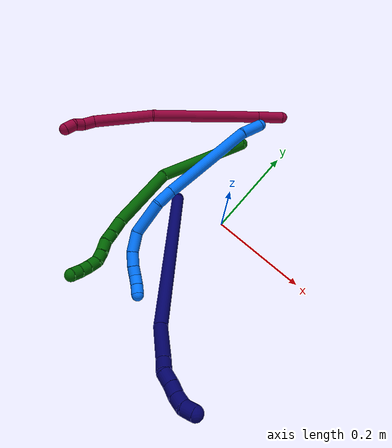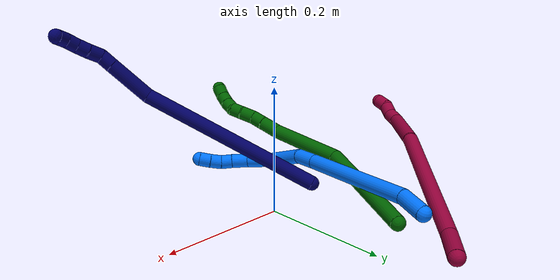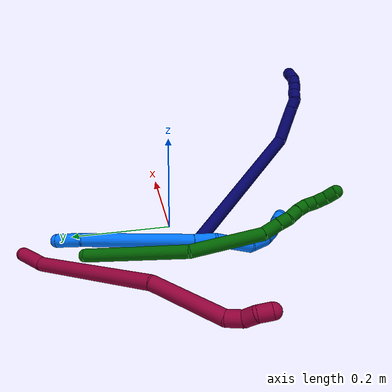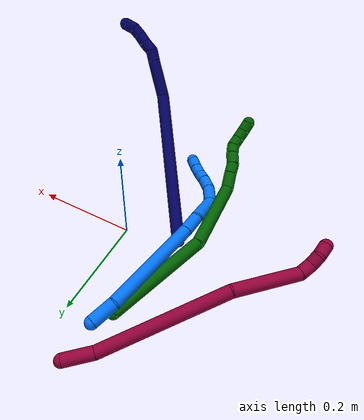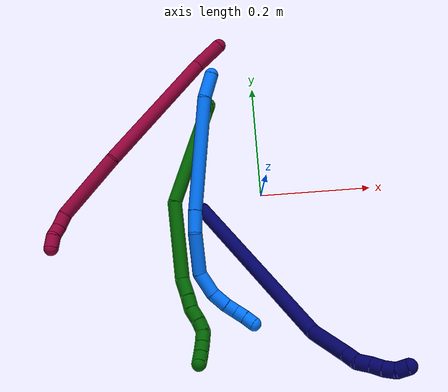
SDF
<sdf version="1.7">
 <world name="default">
  <model name="6">
   <static>0</static>
   <link name="6">
    <collision name="collision-cylinder-e_1_1_4">
     <pose>-0.007725 -0.0869 -0.049241 2.08632 -0.077192 -0.132335</pose>
     <geometry><cylinder><radius>0.0125</radius><length>0.20036</length></cylinder></geometry>
     <surface>
      <friction><ode><mu>1.16</mu><mu2>1.16</mu2><slip1>0</slip1><slip2>0</slip2></ode></friction>
      <contact><ode><kp>1e+06</kp><kd>1</kd><max_vel>0</max_vel><min_depth>0.001</min_depth></ode></contact>
     </surface>
    </collision>
    <visual name="visual-cylinder-e_1_1_4">
     <pose>-0.007725 -0.0869 -0.049241 2.08632 -0.077192 -0.132335</pose>
     <geometry><cylinder><radius>0.0125</radius><length>0.20036</length></cylinder></geometry>
     <material><ambient>0 0.392157 0.003922 1</ambient></material>
    </visual>
    <collision name="collision-cylinder-e_2_4_5">
     <pose>0.004337 -0.236837 -0.119218 1.8886 0.28979 0.397888</pose>
     <geometry><cylinder><radius>0.0125</radius><length>0.138493</length></cylinder></geometry>
     <surface>
      <friction><ode><mu>1.16</mu><mu2>1.16</mu2><slip1>0</slip1><slip2>0</slip2></ode></friction>
      <contact><ode><kp>1e+06</kp><kd>1</kd><max_vel>0</max_vel><min_depth>0.001</min_depth></ode></contact>
     </surface>
    </collision>
    <visual name="visual-cylinder-e_2_4_5">
     <pose>0.004337 -0.236837 -0.119218 1.8886 0.28979 0.397888</pose>
     <geometry><cylinder><radius>0.0125</radius><length>0.138493</length></cylinder></geometry>
     <material><ambient>0 0.392157 0.003922 1</ambient></material>
    </visual>
    <collision name="collision-cylinder-e_3_5_6">
     <pose>0.028736 -0.315865 -0.139747 1.55783 0.28076 0.27719</pose>
     <geometry><cylinder><radius>0.0125</radius><length>0.033291</length></cylinder></geometry>
     <surface>
      <friction><ode><mu>1.16</mu><mu2>1.16</mu2><slip1>0</slip1><slip2>0</slip2></ode></friction>
      <contact><ode><kp>1e+06</kp><kd>1</kd><max_vel>0</max_vel><min_depth>0.001</min_depth></ode></contact>
     </surface>
    </collision>
    <visual name="visual-cylinder-e_3_5_6">
     <pose>0.028736 -0.315865 -0.139747 1.55783 0.28076 0.27719</pose>
     <geometry><cylinder><radius>0.0125</radius><length>0.033291</length></cylinder></geometry>
     <material><ambient>0 0.392157 0.003922 1</ambient></material>
    </visual>
    <collision name="collision-cylinder-e_4_6_7">
     <pose>0.036339 -0.34292 -0.140071 1.61877 0.263772 0.276577</pose>
     <geometry><cylinder><radius>0.0125</radius><length>0.022944</length></cylinder></geometry>
     <surface>
      <friction><ode><mu>1.16</mu><mu2>1.16</mu2><slip1>0</slip1><slip2>0</slip2></ode></friction>
      <contact><ode><kp>1e+06</kp><kd>1</kd><max_vel>0</max_vel><min_depth>0.001</min_depth></ode></contact>
     </surface>
    </collision>
    <visual name="visual-cylinder-e_4_6_7">
     <pose>0.036339 -0.34292 -0.140071 1.61877 0.263772 0.276577</pose>
     <geometry><cylinder><radius>0.0125</radius><length>0.022944</length></cylinder></geometry>
     <material><ambient>0 0.392157 0.003922 1</ambient></material>
    </visual>
    <collision name="collision-cylinder-e_5_7_8">
     <pose>0.044787 -0.364848 -0.13868 1.39573 0.459222 0.38713</pose>
     <geometry><cylinder><radius>0.0125</radius><length>0.024619</length></cylinder></geometry>
     <surface>
      <friction><ode><mu>1.16</mu><mu2>1.16</mu2><slip1>0</slip1><slip2>0</slip2></ode></friction>
      <contact><ode><kp>1e+06</kp><kd>1</kd><max_vel>0</max_vel><min_depth>0.001</min_depth></ode></contact>
     </surface>
    </collision>
    <visual name="visual-cylinder-e_5_7_8">
     <pose>0.044787 -0.364848 -0.13868 1.39573 0.459222 0.38713</pose>
     <geometry><cylinder><radius>0.0125</radius><length>0.024619</length></cylinder></geometry>
     <material><ambient>0 0.392157 0.003922 1</ambient></material>
    </visual>
    <collision name="collision-cylinder-e_6_8_9">
     <pose>0.054363 -0.384906 -0.136709 1.56546 0.421393 0.419215</pose>
     <geometry><cylinder><radius>0.0125</radius><length>0.020146</length></cylinder></geometry>
     <surface>
      <friction><ode><mu>1.16</mu><mu2>1.16</mu2><slip1>0</slip1><slip2>0</slip2></ode></friction>
      <contact><ode><kp>1e+06</kp><kd>1</kd><max_vel>0</max_vel><min_depth>0.001</min_depth></ode></contact>
     </surface>
    </collision>
    <visual name="visual-cylinder-e_6_8_9">
     <pose>0.054363 -0.384906 -0.136709 1.56546 0.421393 0.419215</pose>
     <geometry><cylinder><radius>0.0125</radius><length>0.020146</length></cylinder></geometry>
     <material><ambient>0 0.392157 0.003922 1</ambient></material>
    </visual>
    <collision name="collision-cylinder-e_7_9_10">
     <pose>0.058414 -0.403866 -0.138936 1.79976 -0.006948 -0.008753</pose>
     <geometry><cylinder><radius>0.0125</radius><length>0.020061</length></cylinder></geometry>
     <surface>
      <friction><ode><mu>1.16</mu><mu2>1.16</mu2><slip1>0</slip1><slip2>0</slip2></ode></friction>
      <contact><ode><kp>1e+06</kp><kd>1</kd><max_vel>0</max_vel><min_depth>0.001</min_depth></ode></contact>
     </surface>
    </collision>
    <visual name="visual-cylinder-e_7_9_10">
     <pose>0.058414 -0.403866 -0.138936 1.79976 -0.006948 -0.008753</pose>
     <geometry><cylinder><radius>0.0125</radius><length>0.020061</length></cylinder></geometry>
     <material><ambient>0 0.392157 0.003922 1</ambient></material>
    </visual>
    <collision name="collision-cylinder-e_8_10_11">
     <pose>0.056918 -0.423444 -0.142577 1.70896 -0.142945 -0.164107</pose>
     <geometry><cylinder><radius>0.0125</radius><length>0.020014</length></cylinder></geometry>
     <surface>
      <friction><ode><mu>1.16</mu><mu2>1.16</mu2><slip1>0</slip1><slip2>0</slip2></ode></friction>
      <contact><ode><kp>1e+06</kp><kd>1</kd><max_vel>0</max_vel><min_depth>0.001</min_depth></ode></contact>
     </surface>
    </collision>
    <visual name="visual-cylinder-e_8_10_11">
     <pose>0.056918 -0.423444 -0.142577 1.70896 -0.142945 -0.164107</pose>
     <geometry><cylinder><radius>0.0125</radius><length>0.020014</length></cylinder></geometry>
     <material><ambient>0 0.392157 0.003922 1</ambient></material>
    </visual>
    <collision name="collision-cylinder-e_9_11_2">
     <pose>0.052966 -0.442962 -0.144281 1.60581 -0.254502 -0.263469</pose>
     <geometry><cylinder><radius>0.0125</radius><length>0.020073</length></cylinder></geometry>
     <surface>
      <friction><ode><mu>1.16</mu><mu2>1.16</mu2><slip1>0</slip1><slip2>0</slip2></ode></friction>
      <contact><ode><kp>1e+06</kp><kd>1</kd><max_vel>0</max_vel><min_depth>0.001</min_depth></ode></contact>
     </surface>
    </collision>
    <visual name="visual-cylinder-e_9_11_2">
     <pose>0.052966 -0.442962 -0.144281 1.60581 -0.254502 -0.263469</pose>
     <geometry><cylinder><radius>0.0125</radius><length>0.020073</length></cylinder></geometry>
     <material><ambient>0 0.392157 0.003922 1</ambient></material>
    </visual>
    <collision name="collision-sphere-2">
     <pose>0.050439 -0.452669 -0.144621 0 -0 0</pose>
     <geometry><sphere><radius>0.0125</radius></sphere></geometry>
     <surface>
      <friction><ode><mu>1.16</mu><mu2>1.16</mu2><slip1>0</slip1><slip2>0</slip2></ode></friction>
      <contact><ode><kp>1e+06</kp><kd>1</kd><max_vel>0</max_vel><min_depth>0.001</min_depth></ode></contact>
     </surface>
    </collision>
    <visual name="visual-sphere-2">
     <pose>0.050439 -0.452669 -0.144621 0 -0 0</pose>
     <geometry><sphere><radius>0.0125</radius></sphere></geometry>
     <material><ambient>0 0.392157 0.003922 1</ambient></material>
    </visual>
    <collision name="collision-sphere-11">
     <pose>0.055493 -0.433255 -0.143941 0 -0 0</pose>
     <geometry><sphere><radius>0.0125</radius></sphere></geometry>
     <surface>
      <friction><ode><mu>1.16</mu><mu2>1.16</mu2><slip1>0</slip1><slip2>0</slip2></ode></friction>
      <contact><ode><kp>1e+06</kp><kd>1</kd><max_vel>0</max_vel><min_depth>0.001</min_depth></ode></contact>
     </surface>
    </collision>
    <visual name="visual-sphere-11">
     <pose>0.055493 -0.433255 -0.143941 0 -0 0</pose>
     <geometry><sphere><radius>0.0125</radius></sphere></geometry>
     <material><ambient>0 0.392157 0.003922 1</ambient></material>
    </visual>
    <collision name="collision-sphere-10">
     <pose>0.058344 -0.413634 -0.141213 0 -0 0</pose>
     <geometry><sphere><radius>0.0125</radius></sphere></geometry>
     <surface>
      <friction><ode><mu>1.16</mu><mu2>1.16</mu2><slip1>0</slip1><slip2>0</slip2></ode></friction>
      <contact><ode><kp>1e+06</kp><kd>1</kd><max_vel>0</max_vel><min_depth>0.001</min_depth></ode></contact>
     </surface>
    </collision>
    <visual name="visual-sphere-10">
     <pose>0.058344 -0.413634 -0.141213 0 -0 0</pose>
     <geometry><sphere><radius>0.0125</radius></sphere></geometry>
     <material><ambient>0 0.392157 0.003922 1</ambient></material>
    </visual>
    <collision name="collision-sphere-9">
     <pose>0.058483 -0.394097 -0.13666 0 -0 0</pose>
     <geometry><sphere><radius>0.0125</radius></sphere></geometry>
     <surface>
      <friction><ode><mu>1.16</mu><mu2>1.16</mu2><slip1>0</slip1><slip2>0</slip2></ode></friction>
      <contact><ode><kp>1e+06</kp><kd>1</kd><max_vel>0</max_vel><min_depth>0.001</min_depth></ode></contact>
     </surface>
    </collision>
    <visual name="visual-sphere-9">
     <pose>0.058483 -0.394097 -0.13666 0 -0 0</pose>
     <geometry><sphere><radius>0.0125</radius></sphere></geometry>
     <material><ambient>0 0.392157 0.003922 1</ambient></material>
    </visual>
    <collision name="collision-sphere-4">
     <pose>-0.015451 -0.1738 -0.098482 0 -0 0</pose>
     <geometry><sphere><radius>0.0125</radius></sphere></geometry>
     <surface>
      <friction><ode><mu>1.16</mu><mu2>1.16</mu2><slip1>0</slip1><slip2>0</slip2></ode></friction>
      <contact><ode><kp>1e+06</kp><kd>1</kd><max_vel>0</max_vel><min_depth>0.001</min_depth></ode></contact>
     </surface>
    </collision>
    <visual name="visual-sphere-4">
     <pose>-0.015451 -0.1738 -0.098482 0 -0 0</pose>
     <geometry><sphere><radius>0.0125</radius></sphere></geometry>
     <material><ambient>0 0.392157 0.003922 1</ambient></material>
    </visual>
    <collision name="collision-sphere-1">
     <geometry><sphere><radius>0.0125</radius></sphere></geometry>
     <surface>
      <friction><ode><mu>1.16</mu><mu2>1.16</mu2><slip1>0</slip1><slip2>0</slip2></ode></friction>
      <contact><ode><kp>1e+06</kp><kd>1</kd><max_vel>0</max_vel><min_depth>0.001</min_depth></ode></contact>
     </surface>
    </collision>
    <visual name="visual-sphere-1">
     <geometry><sphere><radius>0.0125</radius></sphere></geometry>
     <material><ambient>0 0.392157 0.003922 1</ambient></material>
    </visual>
    <collision name="collision-sphere-8">
     <pose>0.050243 -0.375714 -0.136758 0 -0 0</pose>
     <geometry><sphere><radius>0.0125</radius></sphere></geometry>
     <surface>
      <friction><ode><mu>1.16</mu><mu2>1.16</mu2><slip1>0</slip1><slip2>0</slip2></ode></friction>
      <contact><ode><kp>1e+06</kp><kd>1</kd><max_vel>0</max_vel><min_depth>0.001</min_depth></ode></contact>
     </surface>
    </collision>
    <visual name="visual-sphere-8">
     <pose>0.050243 -0.375714 -0.136758 0 -0 0</pose>
     <geometry><sphere><radius>0.0125</radius></sphere></geometry>
     <material><ambient>0 0.392157 0.003922 1</ambient></material>
    </visual>
    <collision name="collision-sphere-5">
     <pose>0.024124 -0.299873 -0.139954 0 -0 0</pose>
     <geometry><sphere><radius>0.0125</radius></sphere></geometry>
     <surface>
      <friction><ode><mu>1.16</mu><mu2>1.16</mu2><slip1>0</slip1><slip2>0</slip2></ode></friction>
      <contact><ode><kp>1e+06</kp><kd>1</kd><max_vel>0</max_vel><min_depth>0.001</min_depth></ode></contact>
     </surface>
    </collision>
    <visual name="visual-sphere-5">
     <pose>0.024124 -0.299873 -0.139954 0 -0 0</pose>
     <geometry><sphere><radius>0.0125</radius></sphere></geometry>
     <material><ambient>0 0.392157 0.003922 1</ambient></material>
    </visual>
    <collision name="collision-sphere-6">
     <pose>0.033348 -0.331858 -0.139539 0 -0 0</pose>
     <geometry><sphere><radius>0.0125</radius></sphere></geometry>
     <surface>
      <friction><ode><mu>1.16</mu><mu2>1.16</mu2><slip1>0</slip1><slip2>0</slip2></ode></friction>
      <contact><ode><kp>1e+06</kp><kd>1</kd><max_vel>0</max_vel><min_depth>0.001</min_depth></ode></contact>
     </surface>
    </collision>
    <visual name="visual-sphere-6">
     <pose>0.033348 -0.331858 -0.139539 0 -0 0</pose>
     <geometry><sphere><radius>0.0125</radius></sphere></geometry>
     <material><ambient>0 0.392157 0.003922 1</ambient></material>
    </visual>
    <collision name="collision-sphere-7">
     <pose>0.03933 -0.353983 -0.140602 0 -0 0</pose>
     <geometry><sphere><radius>0.0125</radius></sphere></geometry>
     <surface>
      <friction><ode><mu>1.16</mu><mu2>1.16</mu2><slip1>0</slip1><slip2>0</slip2></ode></friction>
      <contact><ode><kp>1e+06</kp><kd>1</kd><max_vel>0</max_vel><min_depth>0.001</min_depth></ode></contact>
     </surface>
    </collision>
    <visual name="visual-sphere-7">
     <pose>0.03933 -0.353983 -0.140602 0 -0 0</pose>
     <geometry><sphere><radius>0.0125</radius></sphere></geometry>
     <material><ambient>0 0.392157 0.003922 1</ambient></material>
    </visual>
    <inertial>
     <pose>0.01283 -0.221599 -0.097896 0 -0 0</pose>
     <mass>0.5</mass>
     <inertia>
      <ixx>0.000885</ixx>
      <ixy>0</ixy>
      <ixz>0</ixz>
      <iyy>-0.000404</iyy>
      <iyz>0</iyz>
      <izz>0.000782</izz>
     </inertia>
    </inertial>
   </link>
   <pose>-0.08327 0.173515 0.012504 -0.686076 0.618232 -0.41067</pose>
  </model>
  <model name="7">
   <static>0</static>
   <link name="7">
    <collision name="collision-cylinder-e_1_1_4">
     <pose>0.006399 -0.036575 0.153666 0.233668 0.040485 0.004752</pose>
     <geometry><cylinder><radius>0.0125</radius><length>0.316177</length></cylinder></geometry>
     <surface>
      <friction><ode><mu>1.16</mu><mu2>1.16</mu2><slip1>0</slip1><slip2>0</slip2></ode></friction>
      <contact><ode><kp>1e+06</kp><kd>1</kd><max_vel>0</max_vel><min_depth>0.001</min_depth></ode></contact>
     </surface>
    </collision>
    <visual name="visual-cylinder-e_1_1_4">
     <pose>0.006399 -0.036575 0.153666 0.233668 0.040485 0.004752</pose>
     <geometry><cylinder><radius>0.0125</radius><length>0.316177</length></cylinder></geometry>
     <material><ambient>0.003922 0 0.403922 1</ambient></material>
    </visual>
    <collision name="collision-cylinder-e_2_4_5">
     <pose>0.006701 -0.070699 0.345836 -0.063569 -0.156696 0.004992</pose>
     <geometry><cylinder><radius>0.0125</radius><length>0.078121</length></cylinder></geometry>
     <surface>
      <friction><ode><mu>1.16</mu><mu2>1.16</mu2><slip1>0</slip1><slip2>0</slip2></ode></friction>
      <contact><ode><kp>1e+06</kp><kd>1</kd><max_vel>0</max_vel><min_depth>0.001</min_depth></ode></contact>
     </surface>
    </collision>
    <visual name="visual-cylinder-e_2_4_5">
     <pose>0.006701 -0.070699 0.345836 -0.063569 -0.156696 0.004992</pose>
     <geometry><cylinder><radius>0.0125</radius><length>0.078121</length></cylinder></geometry>
     <material><ambient>0.003922 0 0.403922 1</ambient></material>
    </visual>
    <collision name="collision-cylinder-e_3_5_6">
     <pose>-0.001299 -0.067967 0.395423 -0.025339 -0.17014 0.002161</pose>
     <geometry><cylinder><radius>0.0125</radius><length>0.022499</length></cylinder></geometry>
     <surface>
      <friction><ode><mu>1.16</mu><mu2>1.16</mu2><slip1>0</slip1><slip2>0</slip2></ode></friction>
      <contact><ode><kp>1e+06</kp><kd>1</kd><max_vel>0</max_vel><min_depth>0.001</min_depth></ode></contact>
     </surface>
    </collision>
    <visual name="visual-cylinder-e_3_5_6">
     <pose>-0.001299 -0.067967 0.395423 -0.025339 -0.17014 0.002161</pose>
     <geometry><cylinder><radius>0.0125</radius><length>0.022499</length></cylinder></geometry>
     <material><ambient>0.003922 0 0.403922 1</ambient></material>
    </visual>
    <collision name="collision-cylinder-e_4_6_7">
     <pose>-0.000889 -0.063766 0.41717 -0.352256 0.200971 -0.035884</pose>
     <geometry><cylinder><radius>0.0125</radius><length>0.02319</length></cylinder></geometry>
     <surface>
      <friction><ode><mu>1.16</mu><mu2>1.16</mu2><slip1>0</slip1><slip2>0</slip2></ode></friction>
      <contact><ode><kp>1e+06</kp><kd>1</kd><max_vel>0</max_vel><min_depth>0.001</min_depth></ode></contact>
     </surface>
    </collision>
    <visual name="visual-cylinder-e_4_6_7">
     <pose>-0.000889 -0.063766 0.41717 -0.352256 0.200971 -0.035884</pose>
     <geometry><cylinder><radius>0.0125</radius><length>0.02319</length></cylinder></geometry>
     <material><ambient>0.003922 0 0.403922 1</ambient></material>
    </visual>
    <collision name="collision-cylinder-e_5_7_8">
     <pose>0.00278 -0.057348 0.437424 -0.254918 0.135821 -0.017432</pose>
     <geometry><cylinder><radius>0.0125</radius><length>0.020004</length></cylinder></geometry>
     <surface>
      <friction><ode><mu>1.16</mu><mu2>1.16</mu2><slip1>0</slip1><slip2>0</slip2></ode></friction>
      <contact><ode><kp>1e+06</kp><kd>1</kd><max_vel>0</max_vel><min_depth>0.001</min_depth></ode></contact>
     </surface>
    </collision>
    <visual name="visual-cylinder-e_5_7_8">
     <pose>0.00278 -0.057348 0.437424 -0.254918 0.135821 -0.017432</pose>
     <geometry><cylinder><radius>0.0125</radius><length>0.020004</length></cylinder></geometry>
     <material><ambient>0.003922 0 0.403922 1</ambient></material>
    </visual>
    <collision name="collision-cylinder-e_6_8_9">
     <pose>0.005113 -0.050733 0.456078 -0.426203 0.098012 -0.021225</pose>
     <geometry><cylinder><radius>0.0125</radius><length>0.020007</length></cylinder></geometry>
     <surface>
      <friction><ode><mu>1.16</mu><mu2>1.16</mu2><slip1>0</slip1><slip2>0</slip2></ode></friction>
      <contact><ode><kp>1e+06</kp><kd>1</kd><max_vel>0</max_vel><min_depth>0.001</min_depth></ode></contact>
     </surface>
    </collision>
    <visual name="visual-cylinder-e_6_8_9">
     <pose>0.005113 -0.050733 0.456078 -0.426203 0.098012 -0.021225</pose>
     <geometry><cylinder><radius>0.0125</radius><length>0.020007</length></cylinder></geometry>
     <material><ambient>0.003922 0 0.403922 1</ambient></material>
    </visual>
    <collision name="collision-cylinder-e_7_9_2">
     <pose>0.007916 -0.039126 0.471515 -0.865938 0.183362 -0.084941</pose>
     <geometry><cylinder><radius>0.0125</radius><length>0.020003</length></cylinder></geometry>
     <surface>
      <friction><ode><mu>1.16</mu><mu2>1.16</mu2><slip1>0</slip1><slip2>0</slip2></ode></friction>
      <contact><ode><kp>1e+06</kp><kd>1</kd><max_vel>0</max_vel><min_depth>0.001</min_depth></ode></contact>
     </surface>
    </collision>
    <visual name="visual-cylinder-e_7_9_2">
     <pose>0.007916 -0.039126 0.471515 -0.865938 0.183362 -0.084941</pose>
     <geometry><cylinder><radius>0.0125</radius><length>0.020003</length></cylinder></geometry>
     <material><ambient>0.003922 0 0.403922 1</ambient></material>
    </visual>
    <collision name="collision-sphere-2">
     <pose>0.009739 -0.031636 0.477887 0 -0 0</pose>
     <geometry><sphere><radius>0.0125</radius></sphere></geometry>
     <surface>
      <friction><ode><mu>1.16</mu><mu2>1.16</mu2><slip1>0</slip1><slip2>0</slip2></ode></friction>
      <contact><ode><kp>1e+06</kp><kd>1</kd><max_vel>0</max_vel><min_depth>0.001</min_depth></ode></contact>
     </surface>
    </collision>
    <visual name="visual-sphere-2">
     <pose>0.009739 -0.031636 0.477887 0 -0 0</pose>
     <geometry><sphere><radius>0.0125</radius></sphere></geometry>
     <material><ambient>0.003922 0 0.403922 1</ambient></material>
    </visual>
    <collision name="collision-sphere-9">
     <pose>0.006092 -0.046617 0.465143 0 -0 0</pose>
     <geometry><sphere><radius>0.0125</radius></sphere></geometry>
     <surface>
      <friction><ode><mu>1.16</mu><mu2>1.16</mu2><slip1>0</slip1><slip2>0</slip2></ode></friction>
      <contact><ode><kp>1e+06</kp><kd>1</kd><max_vel>0</max_vel><min_depth>0.001</min_depth></ode></contact>
     </surface>
    </collision>
    <visual name="visual-sphere-9">
     <pose>0.006092 -0.046617 0.465143 0 -0 0</pose>
     <geometry><sphere><radius>0.0125</radius></sphere></geometry>
     <material><ambient>0.003922 0 0.403922 1</ambient></material>
    </visual>
    <collision name="collision-sphere-4">
     <pose>0.012797 -0.07315 0.307332 0 -0 0</pose>
     <geometry><sphere><radius>0.0125</radius></sphere></geometry>
     <surface>
      <friction><ode><mu>1.16</mu><mu2>1.16</mu2><slip1>0</slip1><slip2>0</slip2></ode></friction>
      <contact><ode><kp>1e+06</kp><kd>1</kd><max_vel>0</max_vel><min_depth>0.001</min_depth></ode></contact>
     </surface>
    </collision>
    <visual name="visual-sphere-4">
     <pose>0.012797 -0.07315 0.307332 0 -0 0</pose>
     <geometry><sphere><radius>0.0125</radius></sphere></geometry>
     <material><ambient>0.003922 0 0.403922 1</ambient></material>
    </visual>
    <collision name="collision-sphere-1">
     <geometry><sphere><radius>0.0125</radius></sphere></geometry>
     <surface>
      <friction><ode><mu>1.16</mu><mu2>1.16</mu2><slip1>0</slip1><slip2>0</slip2></ode></friction>
      <contact><ode><kp>1e+06</kp><kd>1</kd><max_vel>0</max_vel><min_depth>0.001</min_depth></ode></contact>
     </surface>
    </collision>
    <visual name="visual-sphere-1">
     <geometry><sphere><radius>0.0125</radius></sphere></geometry>
     <material><ambient>0.003922 0 0.403922 1</ambient></material>
    </visual>
    <collision name="collision-sphere-8">
     <pose>0.004134 -0.054849 0.447013 0 -0 0</pose>
     <geometry><sphere><radius>0.0125</radius></sphere></geometry>
     <surface>
      <friction><ode><mu>1.16</mu><mu2>1.16</mu2><slip1>0</slip1><slip2>0</slip2></ode></friction>
      <contact><ode><kp>1e+06</kp><kd>1</kd><max_vel>0</max_vel><min_depth>0.001</min_depth></ode></contact>
     </surface>
    </collision>
    <visual name="visual-sphere-8">
     <pose>0.004134 -0.054849 0.447013 0 -0 0</pose>
     <geometry><sphere><radius>0.0125</radius></sphere></geometry>
     <material><ambient>0.003922 0 0.403922 1</ambient></material>
    </visual>
    <collision name="collision-sphere-5">
     <pose>0.000606 -0.068248 0.38434 0 -0 0</pose>
     <geometry><sphere><radius>0.0125</radius></sphere></geometry>
     <surface>
      <friction><ode><mu>1.16</mu><mu2>1.16</mu2><slip1>0</slip1><slip2>0</slip2></ode></friction>
      <contact><ode><kp>1e+06</kp><kd>1</kd><max_vel>0</max_vel><min_depth>0.001</min_depth></ode></contact>
     </surface>
    </collision>
    <visual name="visual-sphere-5">
     <pose>0.000606 -0.068248 0.38434 0 -0 0</pose>
     <geometry><sphere><radius>0.0125</radius></sphere></geometry>
     <material><ambient>0.003922 0 0.403922 1</ambient></material>
    </visual>
    <collision name="collision-sphere-6">
     <pose>-0.003204 -0.067686 0.406507 0 -0 0</pose>
     <geometry><sphere><radius>0.0125</radius></sphere></geometry>
     <surface>
      <friction><ode><mu>1.16</mu><mu2>1.16</mu2><slip1>0</slip1><slip2>0</slip2></ode></friction>
      <contact><ode><kp>1e+06</kp><kd>1</kd><max_vel>0</max_vel><min_depth>0.001</min_depth></ode></contact>
     </surface>
    </collision>
    <visual name="visual-sphere-6">
     <pose>-0.003204 -0.067686 0.406507 0 -0 0</pose>
     <geometry><sphere><radius>0.0125</radius></sphere></geometry>
     <material><ambient>0.003922 0 0.403922 1</ambient></material>
    </visual>
    <collision name="collision-sphere-7">
     <pose>0.001426 -0.059847 0.427834 0 -0 0</pose>
     <geometry><sphere><radius>0.0125</radius></sphere></geometry>
     <surface>
      <friction><ode><mu>1.16</mu><mu2>1.16</mu2><slip1>0</slip1><slip2>0</slip2></ode></friction>
      <contact><ode><kp>1e+06</kp><kd>1</kd><max_vel>0</max_vel><min_depth>0.001</min_depth></ode></contact>
     </surface>
    </collision>
    <visual name="visual-sphere-7">
     <pose>0.001426 -0.059847 0.427834 0 -0 0</pose>
     <geometry><sphere><radius>0.0125</radius></sphere></geometry>
     <material><ambient>0.003922 0 0.403922 1</ambient></material>
    </visual>
    <inertial>
     <pose>0.005626 -0.04608 0.24296 0 -0 0</pose>
     <mass>0.5</mass>
     <inertia>
      <ixx>0.002708</ixx>
      <ixy>0</ixy>
      <ixz>0</ixz>
      <iyy>0.002635</iyy>
      <iyz>0</iyz>
      <izz>0.000543</izz>
     </inertia>
    </inertial>
   </link>
   <pose>-0.107294 -0.020025 0.011496 0.469131 0.900322 -0.148872</pose>
  </model>
  <model name="8">
   <static>0</static>
   <link name="8">
    <collision name="collision-cylinder-e_1_1_4">
     <pose>-0.003086 -0.003947 0.027784 0.141115 -0.109537 -0.007749</pose>
     <geometry><cylinder><radius>0.0125</radius><length>0.056464</length></cylinder></geometry>
     <surface>
      <friction><ode><mu>1.16</mu><mu2>1.16</mu2><slip1>0</slip1><slip2>0</slip2></ode></friction>
      <contact><ode><kp>1e+06</kp><kd>1</kd><max_vel>0</max_vel><min_depth>0.001</min_depth></ode></contact>
     </surface>
    </collision>
    <visual name="visual-cylinder-e_1_1_4">
     <pose>-0.003086 -0.003947 0.027784 0.141115 -0.109537 -0.007749</pose>
     <geometry><cylinder><radius>0.0125</radius><length>0.056464</length></cylinder></geometry>
     <material><ambient>0.584314 0 0.227451 1</ambient></material>
    </visual>
    <collision name="collision-cylinder-e_2_4_5">
     <pose>-0.040624 -0.008699 0.17412 0.006788 -0.28281 -0.000966</pose>
     <geometry><cylinder><radius>0.0125</radius><length>0.246919</length></cylinder></geometry>
     <surface>
      <friction><ode><mu>1.16</mu><mu2>1.16</mu2><slip1>0</slip1><slip2>0</slip2></ode></friction>
      <contact><ode><kp>1e+06</kp><kd>1</kd><max_vel>0</max_vel><min_depth>0.001</min_depth></ode></contact>
     </surface>
    </collision>
    <visual name="visual-cylinder-e_2_4_5">
     <pose>-0.040624 -0.008699 0.17412 0.006788 -0.28281 -0.000966</pose>
     <geometry><cylinder><radius>0.0125</radius><length>0.246919</length></cylinder></geometry>
     <material><ambient>0.584314 0 0.227451 1</ambient></material>
    </visual>
    <collision name="collision-cylinder-e_3_5_6">
     <pose>-0.075111 -0.013301 0.356032 0.059865 -0.000552 -1.7e-05</pose>
     <geometry><cylinder><radius>0.0125</radius><length>0.126947</length></cylinder></geometry>
     <surface>
      <friction><ode><mu>1.16</mu><mu2>1.16</mu2><slip1>0</slip1><slip2>0</slip2></ode></friction>
      <contact><ode><kp>1e+06</kp><kd>1</kd><max_vel>0</max_vel><min_depth>0.001</min_depth></ode></contact>
     </surface>
    </collision>
    <visual name="visual-cylinder-e_3_5_6">
     <pose>-0.075111 -0.013301 0.356032 0.059865 -0.000552 -1.7e-05</pose>
     <geometry><cylinder><radius>0.0125</radius><length>0.126947</length></cylinder></geometry>
     <material><ambient>0.584314 0 0.227451 1</ambient></material>
    </visual>
    <collision name="collision-cylinder-e_4_6_7">
     <pose>-0.07794 -0.013585 0.431734 -0.277332 -0.214346 0.030027</pose>
     <geometry><cylinder><radius>0.0125</radius><length>0.026266</length></cylinder></geometry>
     <surface>
      <friction><ode><mu>1.16</mu><mu2>1.16</mu2><slip1>0</slip1><slip2>0</slip2></ode></friction>
      <contact><ode><kp>1e+06</kp><kd>1</kd><max_vel>0</max_vel><min_depth>0.001</min_depth></ode></contact>
     </surface>
    </collision>
    <visual name="visual-cylinder-e_4_6_7">
     <pose>-0.07794 -0.013585 0.431734 -0.277332 -0.214346 0.030027</pose>
     <geometry><cylinder><radius>0.0125</radius><length>0.026266</length></cylinder></geometry>
     <material><ambient>0.584314 0 0.227451 1</ambient></material>
    </visual>
    <collision name="collision-cylinder-e_5_7_8">
     <pose>-0.087162 -0.007371 0.45205 -0.326578 -0.652109 0.1113</pose>
     <geometry><cylinder><radius>0.0125</radius><length>0.021184</length></cylinder></geometry>
     <surface>
      <friction><ode><mu>1.16</mu><mu2>1.16</mu2><slip1>0</slip1><slip2>0</slip2></ode></friction>
      <contact><ode><kp>1e+06</kp><kd>1</kd><max_vel>0</max_vel><min_depth>0.001</min_depth></ode></contact>
     </surface>
    </collision>
    <visual name="visual-cylinder-e_5_7_8">
     <pose>-0.087162 -0.007371 0.45205 -0.326578 -0.652109 0.1113</pose>
     <geometry><cylinder><radius>0.0125</radius><length>0.021184</length></cylinder></geometry>
     <material><ambient>0.584314 0 0.227451 1</ambient></material>
    </visual>
    <collision name="collision-cylinder-e_6_8_2">
     <pose>-0.096328 0.00089 0.469244 -0.542638 -0.249014 0.069602</pose>
     <geometry><cylinder><radius>0.0125</radius><length>0.022219</length></cylinder></geometry>
     <surface>
      <friction><ode><mu>1.16</mu><mu2>1.16</mu2><slip1>0</slip1><slip2>0</slip2></ode></friction>
      <contact><ode><kp>1e+06</kp><kd>1</kd><max_vel>0</max_vel><min_depth>0.001</min_depth></ode></contact>
     </surface>
    </collision>
    <visual name="visual-cylinder-e_6_8_2">
     <pose>-0.096328 0.00089 0.469244 -0.542638 -0.249014 0.069602</pose>
     <geometry><cylinder><radius>0.0125</radius><length>0.022219</length></cylinder></geometry>
     <material><ambient>0.584314 0 0.227451 1</ambient></material>
    </visual>
    <collision name="collision-sphere-2">
     <pose>-0.099066 0.00645 0.478465 0 -0 0</pose>
     <geometry><sphere><radius>0.0125</radius></sphere></geometry>
     <surface>
      <friction><ode><mu>1.16</mu><mu2>1.16</mu2><slip1>0</slip1><slip2>0</slip2></ode></friction>
      <contact><ode><kp>1e+06</kp><kd>1</kd><max_vel>0</max_vel><min_depth>0.001</min_depth></ode></contact>
     </surface>
    </collision>
    <visual name="visual-sphere-2">
     <pose>-0.099066 0.00645 0.478465 0 -0 0</pose>
     <geometry><sphere><radius>0.0125</radius></sphere></geometry>
     <material><ambient>0.584314 0 0.227451 1</ambient></material>
    </visual>
    <collision name="collision-sphere-4">
     <pose>-0.006173 -0.007894 0.055568 0 -0 0</pose>
     <geometry><sphere><radius>0.0125</radius></sphere></geometry>
     <surface>
      <friction><ode><mu>1.16</mu><mu2>1.16</mu2><slip1>0</slip1><slip2>0</slip2></ode></friction>
      <contact><ode><kp>1e+06</kp><kd>1</kd><max_vel>0</max_vel><min_depth>0.001</min_depth></ode></contact>
     </surface>
    </collision>
    <visual name="visual-sphere-4">
     <pose>-0.006173 -0.007894 0.055568 0 -0 0</pose>
     <geometry><sphere><radius>0.0125</radius></sphere></geometry>
     <material><ambient>0.584314 0 0.227451 1</ambient></material>
    </visual>
    <collision name="collision-sphere-1">
     <geometry><sphere><radius>0.0125</radius></sphere></geometry>
     <surface>
      <friction><ode><mu>1.16</mu><mu2>1.16</mu2><slip1>0</slip1><slip2>0</slip2></ode></friction>
      <contact><ode><kp>1e+06</kp><kd>1</kd><max_vel>0</max_vel><min_depth>0.001</min_depth></ode></contact>
     </surface>
    </collision>
    <visual name="visual-sphere-1">
     <geometry><sphere><radius>0.0125</radius></sphere></geometry>
     <material><ambient>0.584314 0 0.227451 1</ambient></material>
    </visual>
    <collision name="collision-sphere-8">
     <pose>-0.09359 -0.00467 0.460024 0 -0 0</pose>
     <geometry><sphere><radius>0.0125</radius></sphere></geometry>
     <surface>
      <friction><ode><mu>1.16</mu><mu2>1.16</mu2><slip1>0</slip1><slip2>0</slip2></ode></friction>
      <contact><ode><kp>1e+06</kp><kd>1</kd><max_vel>0</max_vel><min_depth>0.001</min_depth></ode></contact>
     </surface>
    </collision>
    <visual name="visual-sphere-8">
     <pose>-0.09359 -0.00467 0.460024 0 -0 0</pose>
     <geometry><sphere><radius>0.0125</radius></sphere></geometry>
     <material><ambient>0.584314 0 0.227451 1</ambient></material>
    </visual>
    <collision name="collision-sphere-5">
     <pose>-0.075076 -0.009503 0.292672 0 -0 0</pose>
     <geometry><sphere><radius>0.0125</radius></sphere></geometry>
     <surface>
      <friction><ode><mu>1.16</mu><mu2>1.16</mu2><slip1>0</slip1><slip2>0</slip2></ode></friction>
      <contact><ode><kp>1e+06</kp><kd>1</kd><max_vel>0</max_vel><min_depth>0.001</min_depth></ode></contact>
     </surface>
    </collision>
    <visual name="visual-sphere-5">
     <pose>-0.075076 -0.009503 0.292672 0 -0 0</pose>
     <geometry><sphere><radius>0.0125</radius></sphere></geometry>
     <material><ambient>0.584314 0 0.227451 1</ambient></material>
    </visual>
    <collision name="collision-sphere-6">
     <pose>-0.075146 -0.017099 0.419392 0 -0 0</pose>
     <geometry><sphere><radius>0.0125</radius></sphere></geometry>
     <surface>
      <friction><ode><mu>1.16</mu><mu2>1.16</mu2><slip1>0</slip1><slip2>0</slip2></ode></friction>
      <contact><ode><kp>1e+06</kp><kd>1</kd><max_vel>0</max_vel><min_depth>0.001</min_depth></ode></contact>
     </surface>
    </collision>
    <visual name="visual-sphere-6">
     <pose>-0.075146 -0.017099 0.419392 0 -0 0</pose>
     <geometry><sphere><radius>0.0125</radius></sphere></geometry>
     <material><ambient>0.584314 0 0.227451 1</ambient></material>
    </visual>
    <collision name="collision-sphere-7">
     <pose>-0.080734 -0.010072 0.444076 0 -0 0</pose>
     <geometry><sphere><radius>0.0125</radius></sphere></geometry>
     <surface>
      <friction><ode><mu>1.16</mu><mu2>1.16</mu2><slip1>0</slip1><slip2>0</slip2></ode></friction>
      <contact><ode><kp>1e+06</kp><kd>1</kd><max_vel>0</max_vel><min_depth>0.001</min_depth></ode></contact>
     </surface>
    </collision>
    <visual name="visual-sphere-7">
     <pose>-0.080734 -0.010072 0.444076 0 -0 0</pose>
     <geometry><sphere><radius>0.0125</radius></sphere></geometry>
     <material><ambient>0.584314 0 0.227451 1</ambient></material>
    </visual>
    <inertial>
     <pose>-0.051549 -0.009105 0.242205 0 -0 0</pose>
     <mass>0.5</mass>
     <inertia>
      <ixx>0.001403</ixx>
      <ixy>0</ixy>
      <ixz>0</ixz>
      <iyy>0.001461</iyy>
      <iyz>0</iyz>
      <izz>0.000413</izz>
     </inertia>
    </inertial>
   </link>
   <pose>-0.055928 0.287195 0.011455 2.10921 1.51015 -0.167617</pose>
  </model>
  <model name="14">
   <static>0</static>
   <link name="14">
    <collision name="collision-cylinder-e_1_1_4">
     <pose>0.001219 -0.023317 -0.004427 1.75843 0.051312 0.061965</pose>
     <geometry><cylinder><radius>0.0125</radius><length>0.047531</length></cylinder></geometry>
     <surface>
      <friction><ode><mu>1.16</mu><mu2>1.16</mu2><slip1>0</slip1><slip2>0</slip2></ode></friction>
      <contact><ode><kp>1e+06</kp><kd>1</kd><max_vel>0</max_vel><min_depth>0.001</min_depth></ode></contact>
     </surface>
    </collision>
    <visual name="visual-cylinder-e_1_1_4">
     <pose>0.001219 -0.023317 -0.004427 1.75843 0.051312 0.061965</pose>
     <geometry><cylinder><radius>0.0125</radius><length>0.047531</length></cylinder></geometry>
     <material><ambient>0 0.462745 1 1</ambient></material>
    </visual>
    <collision name="collision-cylinder-e_2_4_5">
     <pose>0.02439 -0.139024 -0.046564 1.95831 0.216535 0.320743</pose>
     <geometry><cylinder><radius>0.0125</radius><length>0.204348</length></cylinder></geometry>
     <surface>
      <friction><ode><mu>1.16</mu><mu2>1.16</mu2><slip1>0</slip1><slip2>0</slip2></ode></friction>
      <contact><ode><kp>1e+06</kp><kd>1</kd><max_vel>0</max_vel><min_depth>0.001</min_depth></ode></contact>
     </surface>
    </collision>
    <visual name="visual-cylinder-e_2_4_5">
     <pose>0.02439 -0.139024 -0.046564 1.95831 0.216535 0.320743</pose>
     <geometry><cylinder><radius>0.0125</radius><length>0.204348</length></cylinder></geometry>
     <material><ambient>0 0.462745 1 1</ambient></material>
    </visual>
    <collision name="collision-cylinder-e_3_5_6">
     <pose>0.051949 -0.2489 -0.091209 1.94843 0.289704 0.423161</pose>
     <geometry><cylinder><radius>0.0125</radius><length>0.039261</length></cylinder></geometry>
     <surface>
      <friction><ode><mu>1.16</mu><mu2>1.16</mu2><slip1>0</slip1><slip2>0</slip2></ode></friction>
      <contact><ode><kp>1e+06</kp><kd>1</kd><max_vel>0</max_vel><min_depth>0.001</min_depth></ode></contact>
     </surface>
    </collision>
    <visual name="visual-cylinder-e_3_5_6">
     <pose>0.051949 -0.2489 -0.091209 1.94843 0.289704 0.423161</pose>
     <geometry><cylinder><radius>0.0125</radius><length>0.039261</length></cylinder></geometry>
     <material><ambient>0 0.462745 1 1</ambient></material>
    </visual>
    <collision name="collision-cylinder-e_4_6_7">
     <pose>0.07024 -0.292664 -0.12177 2.30307 0.344617 0.74455</pose>
     <geometry><cylinder><radius>0.0125</radius><length>0.075085</length></cylinder></geometry>
     <surface>
      <friction><ode><mu>1.16</mu><mu2>1.16</mu2><slip1>0</slip1><slip2>0</slip2></ode></friction>
      <contact><ode><kp>1e+06</kp><kd>1</kd><max_vel>0</max_vel><min_depth>0.001</min_depth></ode></contact>
     </surface>
    </collision>
    <visual name="visual-cylinder-e_4_6_7">
     <pose>0.07024 -0.292664 -0.12177 2.30307 0.344617 0.74455</pose>
     <geometry><cylinder><radius>0.0125</radius><length>0.075085</length></cylinder></geometry>
     <material><ambient>0 0.462745 1 1</ambient></material>
    </visual>
    <collision name="collision-cylinder-e_5_7_8">
     <pose>0.099138 -0.330445 -0.153592 2.18998 0.85409 1.44678</pose>
     <geometry><cylinder><radius>0.0125</radius><length>0.043011</length></cylinder></geometry>
     <surface>
      <friction><ode><mu>1.16</mu><mu2>1.16</mu2><slip1>0</slip1><slip2>0</slip2></ode></friction>
      <contact><ode><kp>1e+06</kp><kd>1</kd><max_vel>0</max_vel><min_depth>0.001</min_depth></ode></contact>
     </surface>
    </collision>
    <visual name="visual-cylinder-e_5_7_8">
     <pose>0.099138 -0.330445 -0.153592 2.18998 0.85409 1.44678</pose>
     <geometry><cylinder><radius>0.0125</radius><length>0.043011</length></cylinder></geometry>
     <material><ambient>0 0.462745 1 1</ambient></material>
    </visual>
    <collision name="collision-cylinder-e_6_8_9">
     <pose>0.129163 -0.346835 -0.165729 2.24921 1.14432 1.86387</pose>
     <geometry><cylinder><radius>0.0125</radius><length>0.030338</length></cylinder></geometry>
     <surface>
      <friction><ode><mu>1.16</mu><mu2>1.16</mu2><slip1>0</slip1><slip2>0</slip2></ode></friction>
      <contact><ode><kp>1e+06</kp><kd>1</kd><max_vel>0</max_vel><min_depth>0.001</min_depth></ode></contact>
     </surface>
    </collision>
    <visual name="visual-cylinder-e_6_8_9">
     <pose>0.129163 -0.346835 -0.165729 2.24921 1.14432 1.86387</pose>
     <geometry><cylinder><radius>0.0125</radius><length>0.030338</length></cylinder></geometry>
     <material><ambient>0 0.462745 1 1</ambient></material>
    </visual>
    <collision name="collision-cylinder-e_7_9_10">
     <pose>0.152577 -0.35373 -0.171936 2.41704 1.26511 2.18723</pose>
     <geometry><cylinder><radius>0.0125</radius><length>0.020141</length></cylinder></geometry>
     <surface>
      <friction><ode><mu>1.16</mu><mu2>1.16</mu2><slip1>0</slip1><slip2>0</slip2></ode></friction>
      <contact><ode><kp>1e+06</kp><kd>1</kd><max_vel>0</max_vel><min_depth>0.001</min_depth></ode></contact>
     </surface>
    </collision>
    <visual name="visual-cylinder-e_7_9_10">
     <pose>0.152577 -0.35373 -0.171936 2.41704 1.26511 2.18723</pose>
     <geometry><cylinder><radius>0.0125</radius><length>0.020141</length></cylinder></geometry>
     <material><ambient>0 0.462745 1 1</ambient></material>
    </visual>
    <collision name="collision-cylinder-e_8_10_11">
     <pose>0.171919 -0.358512 -0.174258 1.58961 1.29326 1.3114</pose>
     <geometry><cylinder><radius>0.0125</radius><length>0.020252</length></cylinder></geometry>
     <surface>
      <friction><ode><mu>1.16</mu><mu2>1.16</mu2><slip1>0</slip1><slip2>0</slip2></ode></friction>
      <contact><ode><kp>1e+06</kp><kd>1</kd><max_vel>0</max_vel><min_depth>0.001</min_depth></ode></contact>
     </surface>
    </collision>
    <visual name="visual-cylinder-e_8_10_11">
     <pose>0.171919 -0.358512 -0.174258 1.58961 1.29326 1.3114</pose>
     <geometry><cylinder><radius>0.0125</radius><length>0.020252</length></cylinder></geometry>
     <material><ambient>0 0.462745 1 1</ambient></material>
    </visual>
    <collision name="collision-cylinder-e_9_11_2">
     <pose>0.191011 -0.364869 -0.174308 1.57041 1.20504 1.20468</pose>
     <geometry><cylinder><radius>0.0125</radius><length>0.020033</length></cylinder></geometry>
     <surface>
      <friction><ode><mu>1.16</mu><mu2>1.16</mu2><slip1>0</slip1><slip2>0</slip2></ode></friction>
      <contact><ode><kp>1e+06</kp><kd>1</kd><max_vel>0</max_vel><min_depth>0.001</min_depth></ode></contact>
     </surface>
    </collision>
    <visual name="visual-cylinder-e_9_11_2">
     <pose>0.191011 -0.364869 -0.174308 1.57041 1.20504 1.20468</pose>
     <geometry><cylinder><radius>0.0125</radius><length>0.020033</length></cylinder></geometry>
     <material><ambient>0 0.462745 1 1</ambient></material>
    </visual>
    <collision name="collision-sphere-2">
     <pose>0.200365 -0.368451 -0.174307 0 -0 0</pose>
     <geometry><sphere><radius>0.0125</radius></sphere></geometry>
     <surface>
      <friction><ode><mu>1.16</mu><mu2>1.16</mu2><slip1>0</slip1><slip2>0</slip2></ode></friction>
      <contact><ode><kp>1e+06</kp><kd>1</kd><max_vel>0</max_vel><min_depth>0.001</min_depth></ode></contact>
     </surface>
    </collision>
    <visual name="visual-sphere-2">
     <pose>0.200365 -0.368451 -0.174307 0 -0 0</pose>
     <geometry><sphere><radius>0.0125</radius></sphere></geometry>
     <material><ambient>0 0.462745 1 1</ambient></material>
    </visual>
    <collision name="collision-sphere-11">
     <pose>0.181657 -0.361286 -0.17431 0 -0 0</pose>
     <geometry><sphere><radius>0.0125</radius></sphere></geometry>
     <surface>
      <friction><ode><mu>1.16</mu><mu2>1.16</mu2><slip1>0</slip1><slip2>0</slip2></ode></friction>
      <contact><ode><kp>1e+06</kp><kd>1</kd><max_vel>0</max_vel><min_depth>0.001</min_depth></ode></contact>
     </surface>
    </collision>
    <visual name="visual-sphere-11">
     <pose>0.181657 -0.361286 -0.17431 0 -0 0</pose>
     <geometry><sphere><radius>0.0125</radius></sphere></geometry>
     <material><ambient>0 0.462745 1 1</ambient></material>
    </visual>
    <collision name="collision-sphere-10">
     <pose>0.16218 -0.355738 -0.174205 0 -0 0</pose>
     <geometry><sphere><radius>0.0125</radius></sphere></geometry>
     <surface>
      <friction><ode><mu>1.16</mu><mu2>1.16</mu2><slip1>0</slip1><slip2>0</slip2></ode></friction>
      <contact><ode><kp>1e+06</kp><kd>1</kd><max_vel>0</max_vel><min_depth>0.001</min_depth></ode></contact>
     </surface>
    </collision>
    <visual name="visual-sphere-10">
     <pose>0.16218 -0.355738 -0.174205 0 -0 0</pose>
     <geometry><sphere><radius>0.0125</radius></sphere></geometry>
     <material><ambient>0 0.462745 1 1</ambient></material>
    </visual>
    <collision name="collision-sphere-9">
     <pose>0.142973 -0.351721 -0.169667 0 -0 0</pose>
     <geometry><sphere><radius>0.0125</radius></sphere></geometry>
     <surface>
      <friction><ode><mu>1.16</mu><mu2>1.16</mu2><slip1>0</slip1><slip2>0</slip2></ode></friction>
      <contact><ode><kp>1e+06</kp><kd>1</kd><max_vel>0</max_vel><min_depth>0.001</min_depth></ode></contact>
     </surface>
    </collision>
    <visual name="visual-sphere-9">
     <pose>0.142973 -0.351721 -0.169667 0 -0 0</pose>
     <geometry><sphere><radius>0.0125</radius></sphere></geometry>
     <material><ambient>0 0.462745 1 1</ambient></material>
    </visual>
    <collision name="collision-sphere-4">
     <pose>0.002438 -0.046635 -0.008855 0 -0 0</pose>
     <geometry><sphere><radius>0.0125</radius></sphere></geometry>
     <surface>
      <friction><ode><mu>1.16</mu><mu2>1.16</mu2><slip1>0</slip1><slip2>0</slip2></ode></friction>
      <contact><ode><kp>1e+06</kp><kd>1</kd><max_vel>0</max_vel><min_depth>0.001</min_depth></ode></contact>
     </surface>
    </collision>
    <visual name="visual-sphere-4">
     <pose>0.002438 -0.046635 -0.008855 0 -0 0</pose>
     <geometry><sphere><radius>0.0125</radius></sphere></geometry>
     <material><ambient>0 0.462745 1 1</ambient></material>
    </visual>
    <collision name="collision-sphere-1">
     <geometry><sphere><radius>0.0125</radius></sphere></geometry>
     <surface>
      <friction><ode><mu>1.16</mu><mu2>1.16</mu2><slip1>0</slip1><slip2>0</slip2></ode></friction>
      <contact><ode><kp>1e+06</kp><kd>1</kd><max_vel>0</max_vel><min_depth>0.001</min_depth></ode></contact>
     </surface>
    </collision>
    <visual name="visual-sphere-1">
     <geometry><sphere><radius>0.0125</radius></sphere></geometry>
     <material><ambient>0 0.462745 1 1</ambient></material>
    </visual>
    <collision name="collision-sphere-8">
     <pose>0.115353 -0.34195 -0.161791 0 -0 0</pose>
     <geometry><sphere><radius>0.0125</radius></sphere></geometry>
     <surface>
      <friction><ode><mu>1.16</mu><mu2>1.16</mu2><slip1>0</slip1><slip2>0</slip2></ode></friction>
      <contact><ode><kp>1e+06</kp><kd>1</kd><max_vel>0</max_vel><min_depth>0.001</min_depth></ode></contact>
     </surface>
    </collision>
    <visual name="visual-sphere-8">
     <pose>0.115353 -0.34195 -0.161791 0 -0 0</pose>
     <geometry><sphere><radius>0.0125</radius></sphere></geometry>
     <material><ambient>0 0.462745 1 1</ambient></material>
    </visual>
    <collision name="collision-sphere-5">
     <pose>0.046341 -0.231413 -0.084273 0 -0 0</pose>
     <geometry><sphere><radius>0.0125</radius></sphere></geometry>
     <surface>
      <friction><ode><mu>1.16</mu><mu2>1.16</mu2><slip1>0</slip1><slip2>0</slip2></ode></friction>
      <contact><ode><kp>1e+06</kp><kd>1</kd><max_vel>0</max_vel><min_depth>0.001</min_depth></ode></contact>
     </surface>
    </collision>
    <visual name="visual-sphere-5">
     <pose>0.046341 -0.231413 -0.084273 0 -0 0</pose>
     <geometry><sphere><radius>0.0125</radius></sphere></geometry>
     <material><ambient>0 0.462745 1 1</ambient></material>
    </visual>
    <collision name="collision-sphere-6">
     <pose>0.057557 -0.266386 -0.098146 0 -0 0</pose>
     <geometry><sphere><radius>0.0125</radius></sphere></geometry>
     <surface>
      <friction><ode><mu>1.16</mu><mu2>1.16</mu2><slip1>0</slip1><slip2>0</slip2></ode></friction>
      <contact><ode><kp>1e+06</kp><kd>1</kd><max_vel>0</max_vel><min_depth>0.001</min_depth></ode></contact>
     </surface>
    </collision>
    <visual name="visual-sphere-6">
     <pose>0.057557 -0.266386 -0.098146 0 -0 0</pose>
     <geometry><sphere><radius>0.0125</radius></sphere></geometry>
     <material><ambient>0 0.462745 1 1</ambient></material>
    </visual>
    <collision name="collision-sphere-7">
     <pose>0.082923 -0.318941 -0.145393 0 -0 0</pose>
     <geometry><sphere><radius>0.0125</radius></sphere></geometry>
     <surface>
      <friction><ode><mu>1.16</mu><mu2>1.16</mu2><slip1>0</slip1><slip2>0</slip2></ode></friction>
      <contact><ode><kp>1e+06</kp><kd>1</kd><max_vel>0</max_vel><min_depth>0.001</min_depth></ode></contact>
     </surface>
    </collision>
    <visual name="visual-sphere-7">
     <pose>0.082923 -0.318941 -0.145393 0 -0 0</pose>
     <geometry><sphere><radius>0.0125</radius></sphere></geometry>
     <material><ambient>0 0.462745 1 1</ambient></material>
    </visual>
    <inertial>
     <pose>0.061839 -0.215388 -0.089135 0 -0 0</pose>
     <mass>0.5</mass>
     <inertia>
      <ixx>0.000982</ixx>
      <ixy>0</ixy>
      <ixz>0</ixz>
      <iyy>1.1e-05</iyy>
      <iyz>0</iyz>
      <izz>0.000503</izz>
     </inertia>
    </inertial>
   </link>
   <pose>-0.074288 0.220621 0.046264 -0.326823 -0.098891 -0.370883</pose>
  </model>
 </world>
</sdf>
